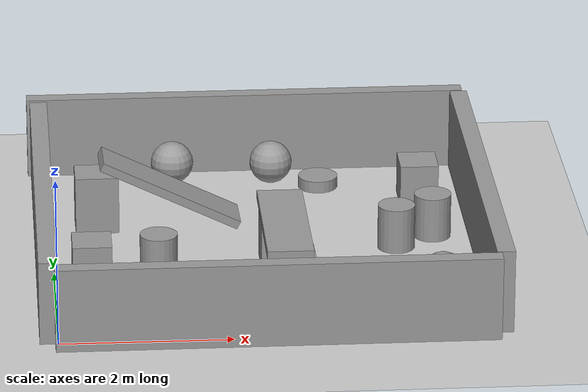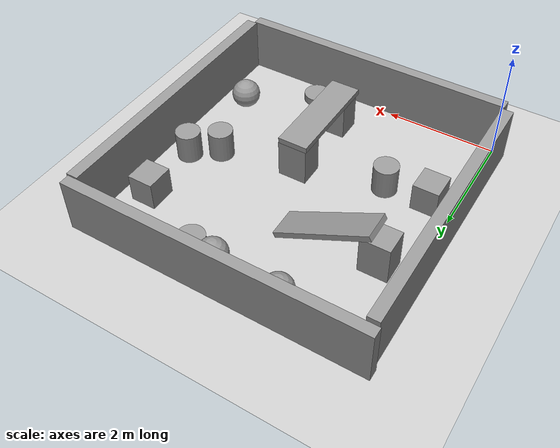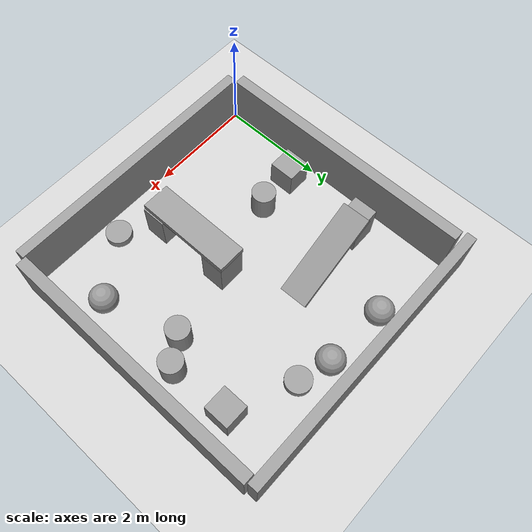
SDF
<sdf version="1.6">
 <world name="default">
  <model name="ground_plane">
   <static>1</static>
   <link name="link">
    <collision name="collision">
     <geometry><plane><normal>0 0 1</normal><size>100 100</size></plane></geometry>
     <surface><friction><ode><mu>100</mu><mu2>50</mu2></ode></friction></surface>
    </collision>
    <visual name="visual">
     <cast_shadows>0</cast_shadows>
     <geometry><plane><normal>0 0 1</normal><size>100 100</size></plane></geometry>
     <material>
      <script><uri>file://media/materials/scripts/gazebo.material</uri><name>Gazebo/Grey</name></script>
     </material>
    </visual>
   </link>
  </model>
  <light name="sun" type="directional">
   <pose>0 0 10 0 -0 0</pose>
   <diffuse>0.8 0.8 0.8 1</diffuse>
   <specular>0.1 0.1 0.1 1</specular>
   <attenuation>
    <range>1000</range>
    <constant>0.9</constant>
    <linear>0.01</linear>
    <quadratic>0.001</quadratic>
   </attenuation>
   <direction>-0.5 0.5 -1</direction>
  </light>
  <gravity>0 0 -9.8</gravity>
  <magnetic_field>6e-06 2.3e-05 -4.2e-05</magnetic_field>
  <atmosphere type="adiabatic"/>
  <physics name="default_physics" default="0" type="ode">
   <max_step_size>0.001</max_step_size>
   <real_time_factor>1</real_time_factor>
   <real_time_update_rate>1000</real_time_update_rate>
  </physics>
  <scene><ambient>0.4 0.4 0.4 1</ambient><background>0.7 0.7 0.7 1</background><shadows>1</shadows></scene>
  <spherical_coordinates>
   <surface_model>EARTH_WGS84</surface_model>
   <latitude_deg>0</latitude_deg>
   <longitude_deg>0</longitude_deg>
   <elevation>0</elevation>
   <heading_deg>0</heading_deg>
  </spherical_coordinates>
  <model name="object1">
   <link name="link">
    <inertial>
     <mass>1</mass>
     <inertia>
      <ixx>0.166667</ixx>
      <ixy>0</ixy>
      <ixz>0</ixz>
      <iyy>0.166667</iyy>
      <iyz>0</iyz>
      <izz>0.166667</izz>
     </inertia>
    </inertial>
    <visual name="visual">
     <geometry><box><size>0.462419 0.484025 0.518106</size></box></geometry>
     <material>
      <script><name>Gazebo/Grey</name><uri>file://media/materials/scripts/gazebo.material</uri></script>
      <ambient>0.3 0.3 0.3 1</ambient>
      <diffuse>0.7 0.7 0.7 1</diffuse>
      <specular>0.01 0.01 0.01 1</specular>
      <emissive>0 0 0 1</emissive>
     </material>
    </visual>
    <collision name="collision">
     <geometry><box><size>0.462419 0.484025 0.518106</size></box></geometry>
     <surface>
      <friction>
       <ode><mu>1</mu><mu2>1</mu2><fdir1>0 0 0</fdir1><slip1>0</slip1><slip2>0</slip2></ode>
       <torsional>
        <coefficient>1</coefficient>
        <patch_radius>0</patch_radius>
        <surface_radius>0</surface_radius>
        <use_patch_radius>1</use_patch_radius>
        <ode><slip>0</slip></ode>
       </torsional>
      </friction>
      <bounce><restitution_coefficient>0</restitution_coefficient><threshold>1e+06</threshold></bounce>
      <contact>
       <collide_without_contact>0</collide_without_contact>
       <collide_without_contact_bitmask>1</collide_without_contact_bitmask>
       <collide_bitmask>1</collide_bitmask>
       <ode>
        <soft_cfm>0</soft_cfm>
        <soft_erp>0.2</soft_erp>
        <kp>1e+13</kp>
        <kd>1</kd>
        <max_vel>0.01</max_vel>
        <min_depth>0</min_depth>
       </ode>
       <bullet>
        <split_impulse>1</split_impulse>
        <split_impulse_penetration_threshold>-0.01</split_impulse_penetration_threshold>
        <soft_cfm>0</soft_cfm>
        <soft_erp>0.2</soft_erp>
        <kp>1e+13</kp>
        <kd>1</kd>
       </bullet>
      </contact>
     </surface>
    </collision>
   </link>
   <static>1</static>
   <pose>0.440381 1.76912 0.259053 0 -0 0</pose>
  </model>
  <model name="object1_clone_0">
   <link name="link">
    <inertial>
     <mass>1</mass>
     <inertia>
      <ixx>0.166667</ixx>
      <ixy>0</ixy>
      <ixz>0</ixz>
      <iyy>0.166667</iyy>
      <iyz>0</iyz>
      <izz>0.166667</izz>
     </inertia>
    </inertial>
    <visual name="visual">
     <geometry><box><size>0.462419 0.484025 0.518106</size></box></geometry>
     <material>
      <script><name>Gazebo/Grey</name><uri>file://media/materials/scripts/gazebo.material</uri></script>
      <ambient>0.3 0.3 0.3 1</ambient>
      <diffuse>0.7 0.7 0.7 1</diffuse>
      <specular>0.01 0.01 0.01 1</specular>
      <emissive>0 0 0 1</emissive>
     </material>
    </visual>
    <collision name="collision">
     <geometry><box><size>0.462419 0.484025 0.518106</size></box></geometry>
     <surface>
      <friction>
       <ode><mu>1</mu><mu2>1</mu2><fdir1>0 0 0</fdir1><slip1>0</slip1><slip2>0</slip2></ode>
       <torsional>
        <coefficient>1</coefficient>
        <patch_radius>0</patch_radius>
        <surface_radius>0</surface_radius>
        <use_patch_radius>1</use_patch_radius>
        <ode><slip>0</slip></ode>
       </torsional>
      </friction>
      <bounce><restitution_coefficient>0</restitution_coefficient><threshold>1e+06</threshold></bounce>
      <contact>
       <collide_without_contact>0</collide_without_contact>
       <collide_without_contact_bitmask>1</collide_without_contact_bitmask>
       <collide_bitmask>1</collide_bitmask>
       <ode>
        <soft_cfm>0</soft_cfm>
        <soft_erp>0.2</soft_erp>
        <kp>1e+13</kp>
        <kd>1</kd>
        <max_vel>0.01</max_vel>
        <min_depth>0</min_depth>
       </ode>
       <bullet>
        <split_impulse>1</split_impulse>
        <split_impulse_penetration_threshold>-0.01</split_impulse_penetration_threshold>
        <soft_cfm>0</soft_cfm>
        <soft_erp>0.2</soft_erp>
        <kp>1e+13</kp>
        <kd>1</kd>
       </bullet>
      </contact>
     </surface>
    </collision>
   </link>
   <static>1</static>
   <pose>4.48758 3.97968 0.259053 0 -0 0</pose>
  </model>
  <model name="object2">
   <link name="link">
    <inertial>
     <mass>1</mass>
     <inertia>
      <ixx>0.166667</ixx>
      <ixy>0</ixy>
      <ixz>0</ixz>
      <iyy>0.166667</iyy>
      <iyz>0</iyz>
      <izz>0.166667</izz>
     </inertia>
    </inertial>
    <visual name="visual">
     <geometry><box><size>0.518422 0.450005 0.707103</size></box></geometry>
     <material>
      <script><name>Gazebo/Grey</name><uri>file://media/materials/scripts/gazebo.material</uri></script>
      <ambient>0.3 0.3 0.3 1</ambient>
      <diffuse>0.7 0.7 0.7 1</diffuse>
      <specular>0.01 0.01 0.01 1</specular>
      <emissive>0 0 0 1</emissive>
     </material>
    </visual>
    <collision name="collision">
     <geometry><box><size>0.518422 0.450005 0.707103</size></box></geometry>
     <surface>
      <friction>
       <ode><mu>1</mu><mu2>1</mu2><fdir1>0 0 0</fdir1><slip1>0</slip1><slip2>0</slip2></ode>
       <torsional>
        <coefficient>1</coefficient>
        <patch_radius>0</patch_radius>
        <surface_radius>0</surface_radius>
        <use_patch_radius>1</use_patch_radius>
        <ode><slip>0</slip></ode>
       </torsional>
      </friction>
      <bounce><restitution_coefficient>0</restitution_coefficient><threshold>1e+06</threshold></bounce>
      <contact>
       <collide_without_contact>0</collide_without_contact>
       <collide_without_contact_bitmask>1</collide_without_contact_bitmask>
       <collide_bitmask>1</collide_bitmask>
       <ode>
        <soft_cfm>0</soft_cfm>
        <soft_erp>0.2</soft_erp>
        <kp>1e+13</kp>
        <kd>1</kd>
        <max_vel>0.01</max_vel>
        <min_depth>0</min_depth>
       </ode>
       <bullet>
        <split_impulse>1</split_impulse>
        <split_impulse_penetration_threshold>-0.01</split_impulse_penetration_threshold>
        <soft_cfm>0</soft_cfm>
        <soft_erp>0.2</soft_erp>
        <kp>1e+13</kp>
        <kd>1</kd>
       </bullet>
      </contact>
     </surface>
    </collision>
   </link>
   <static>1</static>
   <pose>0.548705 3.38818 0.353552 0 -0 0.0094</pose>
  </model>
  <model name="object3">
   <link name="link">
    <inertial>
     <mass>1</mass>
     <inertia>
      <ixx>0.166667</ixx>
      <ixy>0</ixy>
      <ixz>0</ixz>
      <iyy>0.166667</iyy>
      <iyz>0</iyz>
      <izz>0.166667</izz>
     </inertia>
    </inertial>
    <visual name="visual">
     <geometry><box><size>1.83274 0.534759 0.105167</size></box></geometry>
     <material>
      <script><name>Gazebo/Grey</name><uri>file://media/materials/scripts/gazebo.material</uri></script>
      <ambient>0.3 0.3 0.3 1</ambient>
      <diffuse>0.7 0.7 0.7 1</diffuse>
      <specular>0.01 0.01 0.01 1</specular>
      <emissive>0 0 0 1</emissive>
     </material>
    </visual>
    <collision name="collision">
     <geometry><box><size>1.83274 0.534759 0.105167</size></box></geometry>
     <surface>
      <friction>
       <ode><mu>1</mu><mu2>1</mu2><fdir1>0 0 0</fdir1><slip1>0</slip1><slip2>0</slip2></ode>
       <torsional>
        <coefficient>1</coefficient>
        <patch_radius>0</patch_radius>
        <surface_radius>0</surface_radius>
        <use_patch_radius>1</use_patch_radius>
        <ode><slip>0</slip></ode>
       </torsional>
      </friction>
      <bounce><restitution_coefficient>0</restitution_coefficient><threshold>1e+06</threshold></bounce>
      <contact>
       <collide_without_contact>0</collide_without_contact>
       <collide_without_contact_bitmask>1</collide_without_contact_bitmask>
       <collide_bitmask>1</collide_bitmask>
       <ode>
        <soft_cfm>0</soft_cfm>
        <soft_erp>0.2</soft_erp>
        <kp>1e+13</kp>
        <kd>1</kd>
        <max_vel>0.01</max_vel>
        <min_depth>0</min_depth>
       </ode>
       <bullet>
        <split_impulse>1</split_impulse>
        <split_impulse_penetration_threshold>-0.01</split_impulse_penetration_threshold>
        <soft_cfm>0</soft_cfm>
        <soft_erp>0.2</soft_erp>
        <kp>1e+13</kp>
        <kd>1</kd>
       </bullet>
      </contact>
     </surface>
    </collision>
   </link>
   <static>1</static>
   <pose>1.42663 3.42723 0.456993 0.008272 0.462769 0.028019</pose>
  </model>
  <model name="object2_clone">
   <link name="link">
    <inertial>
     <mass>1</mass>
     <inertia>
      <ixx>0.166667</ixx>
      <ixy>0</ixy>
      <ixz>0</ixz>
      <iyy>0.166667</iyy>
      <iyz>0</iyz>
      <izz>0.166667</izz>
     </inertia>
    </inertial>
    <visual name="visual">
     <geometry><box><size>0.518422 0.450005 0.707103</size></box></geometry>
     <material>
      <script><name>Gazebo/Grey</name><uri>file://media/materials/scripts/gazebo.material</uri></script>
      <ambient>0.3 0.3 0.3 1</ambient>
      <diffuse>0.7 0.7 0.7 1</diffuse>
      <specular>0.01 0.01 0.01 1</specular>
      <emissive>0 0 0 1</emissive>
     </material>
    </visual>
    <collision name="collision">
     <geometry><box><size>0.518422 0.450005 0.707103</size></box></geometry>
     <surface>
      <friction>
       <ode><mu>1</mu><mu2>1</mu2><fdir1>0 0 0</fdir1><slip1>0</slip1><slip2>0</slip2></ode>
       <torsional>
        <coefficient>1</coefficient>
        <patch_radius>0</patch_radius>
        <surface_radius>0</surface_radius>
        <use_patch_radius>1</use_patch_radius>
        <ode><slip>0</slip></ode>
       </torsional>
      </friction>
      <bounce><restitution_coefficient>0</restitution_coefficient><threshold>1e+06</threshold></bounce>
      <contact>
       <collide_without_contact>0</collide_without_contact>
       <collide_without_contact_bitmask>1</collide_without_contact_bitmask>
       <collide_bitmask>1</collide_bitmask>
       <ode>
        <soft_cfm>0</soft_cfm>
        <soft_erp>0.2</soft_erp>
        <kp>1e+13</kp>
        <kd>1</kd>
        <max_vel>0.01</max_vel>
        <min_depth>0</min_depth>
       </ode>
       <bullet>
        <split_impulse>1</split_impulse>
        <split_impulse_penetration_threshold>-0.01</split_impulse_penetration_threshold>
        <soft_cfm>0</soft_cfm>
        <soft_erp>0.2</soft_erp>
        <kp>1e+13</kp>
        <kd>1</kd>
       </bullet>
      </contact>
     </surface>
    </collision>
   </link>
   <static>1</static>
   <pose>2.69917 2.20262 0.353552 0 -0 0.0094</pose>
  </model>
  <model name="object2_clone_0">
   <link name="link">
    <inertial>
     <mass>1</mass>
     <inertia>
      <ixx>0.166667</ixx>
      <ixy>0</ixy>
      <ixz>0</ixz>
      <iyy>0.166667</iyy>
      <iyz>0</iyz>
      <izz>0.166667</izz>
     </inertia>
    </inertial>
    <visual name="visual">
     <geometry><box><size>0.518422 0.450005 0.707103</size></box></geometry>
     <material>
      <script><name>Gazebo/Grey</name><uri>file://media/materials/scripts/gazebo.material</uri></script>
      <ambient>0.3 0.3 0.3 1</ambient>
      <diffuse>0.7 0.7 0.7 1</diffuse>
      <specular>0.01 0.01 0.01 1</specular>
      <emissive>0 0 0 1</emissive>
     </material>
    </visual>
    <collision name="collision">
     <geometry><box><size>0.518422 0.450005 0.707103</size></box></geometry>
     <surface>
      <friction>
       <ode><mu>1</mu><mu2>1</mu2><fdir1>0 0 0</fdir1><slip1>0</slip1><slip2>0</slip2></ode>
       <torsional>
        <coefficient>1</coefficient>
        <patch_radius>0</patch_radius>
        <surface_radius>0</surface_radius>
        <use_patch_radius>1</use_patch_radius>
        <ode><slip>0</slip></ode>
       </torsional>
      </friction>
      <bounce><restitution_coefficient>0</restitution_coefficient><threshold>1e+06</threshold></bounce>
      <contact>
       <collide_without_contact>0</collide_without_contact>
       <collide_without_contact_bitmask>1</collide_without_contact_bitmask>
       <collide_bitmask>1</collide_bitmask>
       <ode>
        <soft_cfm>0</soft_cfm>
        <soft_erp>0.2</soft_erp>
        <kp>1e+13</kp>
        <kd>1</kd>
        <max_vel>0.01</max_vel>
        <min_depth>0</min_depth>
       </ode>
       <bullet>
        <split_impulse>1</split_impulse>
        <split_impulse_penetration_threshold>-0.01</split_impulse_penetration_threshold>
        <soft_cfm>0</soft_cfm>
        <soft_erp>0.2</soft_erp>
        <kp>1e+13</kp>
        <kd>1</kd>
       </bullet>
      </contact>
     </surface>
    </collision>
   </link>
   <static>1</static>
   <pose>2.7204 0.828022 0.353552 0 -0 0.0094</pose>
  </model>
  <model name="object3_clone">
   <link name="link">
    <inertial>
     <mass>1</mass>
     <inertia>
      <ixx>0.166667</ixx>
      <ixy>0</ixy>
      <ixz>0</ixz>
      <iyy>0.166667</iyy>
      <iyz>0</iyz>
      <izz>0.166667</izz>
     </inertia>
    </inertial>
    <visual name="visual">
     <geometry><box><size>1.83274 0.534759 0.105167</size></box></geometry>
     <material>
      <script><name>Gazebo/Grey</name><uri>file://media/materials/scripts/gazebo.material</uri></script>
      <ambient>0.3 0.3 0.3 1</ambient>
      <diffuse>0.7 0.7 0.7 1</diffuse>
      <specular>0.01 0.01 0.01 1</specular>
      <emissive>0 0 0 1</emissive>
     </material>
    </visual>
    <collision name="collision">
     <geometry><box><size>1.83274 0.534759 0.105167</size></box></geometry>
     <surface>
      <friction>
       <ode><mu>1</mu><mu2>1</mu2><fdir1>0 0 0</fdir1><slip1>0</slip1><slip2>0</slip2></ode>
       <torsional>
        <coefficient>1</coefficient>
        <patch_radius>0</patch_radius>
        <surface_radius>0</surface_radius>
        <use_patch_radius>1</use_patch_radius>
        <ode><slip>0</slip></ode>
       </torsional>
      </friction>
      <bounce><restitution_coefficient>0</restitution_coefficient><threshold>1e+06</threshold></bounce>
      <contact>
       <collide_without_contact>0</collide_without_contact>
       <collide_without_contact_bitmask>1</collide_without_contact_bitmask>
       <collide_bitmask>1</collide_bitmask>
       <ode>
        <soft_cfm>0</soft_cfm>
        <soft_erp>0.2</soft_erp>
        <kp>1e+13</kp>
        <kd>1</kd>
        <max_vel>0.01</max_vel>
        <min_depth>0</min_depth>
       </ode>
       <bullet>
        <split_impulse>1</split_impulse>
        <split_impulse_penetration_threshold>-0.01</split_impulse_penetration_threshold>
        <soft_cfm>0</soft_cfm>
        <soft_erp>0.2</soft_erp>
        <kp>1e+13</kp>
        <kd>1</kd>
       </bullet>
      </contact>
     </surface>
    </collision>
   </link>
   <static>1</static>
   <pose>2.6845 1.51565 0.75991 0 0 -1.57</pose>
  </model>
  <model name="object4">
   <link name="link">
    <inertial>
     <mass>1</mass>
     <inertia><ixx>0.1</ixx><ixy>0</ixy><ixz>0</ixz><iyy>0.1</iyy><iyz>0</iyz><izz>0.1</izz></inertia>
    </inertial>
    <visual name="visual">
     <geometry><sphere><radius>0.260368</radius></sphere></geometry>
     <material>
      <script><name>Gazebo/Grey</name><uri>file://media/materials/scripts/gazebo.material</uri></script>
      <ambient>0.3 0.3 0.3 1</ambient>
      <diffuse>0.7 0.7 0.7 1</diffuse>
      <specular>0.01 0.01 0.01 1</specular>
      <emissive>0 0 0 1</emissive>
     </material>
    </visual>
    <collision name="collision">
     <geometry><sphere><radius>0.260368</radius></sphere></geometry>
     <surface>
      <friction>
       <ode><mu>1</mu><mu2>1</mu2><fdir1>0 0 0</fdir1><slip1>0</slip1><slip2>0</slip2></ode>
       <torsional>
        <coefficient>1</coefficient>
        <patch_radius>0</patch_radius>
        <surface_radius>0</surface_radius>
        <use_patch_radius>1</use_patch_radius>
        <ode><slip>0</slip></ode>
       </torsional>
      </friction>
      <bounce><restitution_coefficient>0</restitution_coefficient><threshold>1e+06</threshold></bounce>
      <contact>
       <collide_without_contact>0</collide_without_contact>
       <collide_without_contact_bitmask>1</collide_without_contact_bitmask>
       <collide_bitmask>1</collide_bitmask>
       <ode>
        <soft_cfm>0</soft_cfm>
        <soft_erp>0.2</soft_erp>
        <kp>1e+13</kp>
        <kd>1</kd>
        <max_vel>0.01</max_vel>
        <min_depth>0</min_depth>
       </ode>
       <bullet>
        <split_impulse>1</split_impulse>
        <split_impulse_penetration_threshold>-0.01</split_impulse_penetration_threshold>
        <soft_cfm>0</soft_cfm>
        <soft_erp>0.2</soft_erp>
        <kp>1e+13</kp>
        <kd>1</kd>
       </bullet>
      </contact>
     </surface>
    </collision>
   </link>
   <static>1</static>
   <pose>4.4994 1.13162 0.247825 0 -0 0</pose>
  </model>
  <model name="object4_clone">
   <link name="link">
    <inertial>
     <mass>1</mass>
     <inertia><ixx>0.1</ixx><ixy>0</ixy><ixz>0</ixz><iyy>0.1</iyy><iyz>0</iyz><izz>0.1</izz></inertia>
    </inertial>
    <visual name="visual">
     <geometry><sphere><radius>0.260368</radius></sphere></geometry>
     <material>
      <script><name>Gazebo/Grey</name><uri>file://media/materials/scripts/gazebo.material</uri></script>
      <ambient>0.3 0.3 0.3 1</ambient>
      <diffuse>0.7 0.7 0.7 1</diffuse>
      <specular>0.01 0.01 0.01 1</specular>
      <emissive>0 0 0 1</emissive>
     </material>
    </visual>
    <collision name="collision">
     <geometry><sphere><radius>0.260368</radius></sphere></geometry>
     <surface>
      <friction>
       <ode><mu>1</mu><mu2>1</mu2><fdir1>0 0 0</fdir1><slip1>0</slip1><slip2>0</slip2></ode>
       <torsional>
        <coefficient>1</coefficient>
        <patch_radius>0</patch_radius>
        <surface_radius>0</surface_radius>
        <use_patch_radius>1</use_patch_radius>
        <ode><slip>0</slip></ode>
       </torsional>
      </friction>
      <bounce><restitution_coefficient>0</restitution_coefficient><threshold>1e+06</threshold></bounce>
      <contact>
       <collide_without_contact>0</collide_without_contact>
       <collide_without_contact_bitmask>1</collide_without_contact_bitmask>
       <collide_bitmask>1</collide_bitmask>
       <ode>
        <soft_cfm>0</soft_cfm>
        <soft_erp>0.2</soft_erp>
        <kp>1e+13</kp>
        <kd>1</kd>
        <max_vel>0.01</max_vel>
        <min_depth>0</min_depth>
       </ode>
       <bullet>
        <split_impulse>1</split_impulse>
        <split_impulse_penetration_threshold>-0.01</split_impulse_penetration_threshold>
        <soft_cfm>0</soft_cfm>
        <soft_erp>0.2</soft_erp>
        <kp>1e+13</kp>
        <kd>1</kd>
       </bullet>
      </contact>
     </surface>
    </collision>
   </link>
   <static>1</static>
   <pose>2.73638 4.65874 0.260368 0 -0 0</pose>
  </model>
  <model name="object4_clone_0">
   <link name="link">
    <inertial>
     <mass>1</mass>
     <inertia><ixx>0.1</ixx><ixy>0</ixy><ixz>0</ixz><iyy>0.1</iyy><iyz>0</iyz><izz>0.1</izz></inertia>
    </inertial>
    <visual name="visual">
     <geometry><sphere><radius>0.260368</radius></sphere></geometry>
     <material>
      <script><name>Gazebo/Grey</name><uri>file://media/materials/scripts/gazebo.material</uri></script>
      <ambient>0.3 0.3 0.3 1</ambient>
      <diffuse>0.7 0.7 0.7 1</diffuse>
      <specular>0.01 0.01 0.01 1</specular>
      <emissive>0 0 0 1</emissive>
     </material>
    </visual>
    <collision name="collision">
     <geometry><sphere><radius>0.260368</radius></sphere></geometry>
     <surface>
      <friction>
       <ode><mu>1</mu><mu2>1</mu2><fdir1>0 0 0</fdir1><slip1>0</slip1><slip2>0</slip2></ode>
       <torsional>
        <coefficient>1</coefficient>
        <patch_radius>0</patch_radius>
        <surface_radius>0</surface_radius>
        <use_patch_radius>1</use_patch_radius>
        <ode><slip>0</slip></ode>
       </torsional>
      </friction>
      <bounce><restitution_coefficient>0</restitution_coefficient><threshold>1e+06</threshold></bounce>
      <contact>
       <collide_without_contact>0</collide_without_contact>
       <collide_without_contact_bitmask>1</collide_without_contact_bitmask>
       <collide_bitmask>1</collide_bitmask>
       <ode>
        <soft_cfm>0</soft_cfm>
        <soft_erp>0.2</soft_erp>
        <kp>1e+13</kp>
        <kd>1</kd>
        <max_vel>0.01</max_vel>
        <min_depth>0</min_depth>
       </ode>
       <bullet>
        <split_impulse>1</split_impulse>
        <split_impulse_penetration_threshold>-0.01</split_impulse_penetration_threshold>
        <soft_cfm>0</soft_cfm>
        <soft_erp>0.2</soft_erp>
        <kp>1e+13</kp>
        <kd>1</kd>
       </bullet>
      </contact>
     </surface>
    </collision>
   </link>
   <static>1</static>
   <pose>1.5218 4.71849 0.260368 0 -0 0</pose>
  </model>
  <model name="object5">
   <link name="link">
    <inertial>
     <mass>1</mass>
     <inertia><ixx>0.145833</ixx><ixy>0</ixy><ixz>0</ixz><iyy>0.145833</iyy><iyz>0</iyz><izz>0.125</izz></inertia>
    </inertial>
    <visual name="visual">
     <geometry><cylinder><radius>0.221555</radius><length>0.542695</length></cylinder></geometry>
     <material>
      <script><name>Gazebo/Grey</name><uri>file://media/materials/scripts/gazebo.material</uri></script>
      <ambient>0.3 0.3 0.3 1</ambient>
      <diffuse>0.7 0.7 0.7 1</diffuse>
      <specular>0.01 0.01 0.01 1</specular>
      <emissive>0 0 0 1</emissive>
     </material>
    </visual>
    <collision name="collision">
     <geometry><cylinder><radius>0.221555</radius><length>0.542695</length></cylinder></geometry>
     <surface>
      <friction>
       <ode><mu>1</mu><mu2>1</mu2><fdir1>0 0 0</fdir1><slip1>0</slip1><slip2>0</slip2></ode>
       <torsional>
        <coefficient>1</coefficient>
        <patch_radius>0</patch_radius>
        <surface_radius>0</surface_radius>
        <use_patch_radius>1</use_patch_radius>
        <ode><slip>0</slip></ode>
       </torsional>
      </friction>
      <bounce><restitution_coefficient>0</restitution_coefficient><threshold>1e+06</threshold></bounce>
      <contact>
       <collide_without_contact>0</collide_without_contact>
       <collide_without_contact_bitmask>1</collide_without_contact_bitmask>
       <collide_bitmask>1</collide_bitmask>
       <ode>
        <soft_cfm>0</soft_cfm>
        <soft_erp>0.2</soft_erp>
        <kp>1e+13</kp>
        <kd>1</kd>
        <max_vel>0.01</max_vel>
        <min_depth>0</min_depth>
       </ode>
       <bullet>
        <split_impulse>1</split_impulse>
        <split_impulse_penetration_threshold>-0.01</split_impulse_penetration_threshold>
        <soft_cfm>0</soft_cfm>
        <soft_erp>0.2</soft_erp>
        <kp>1e+13</kp>
        <kd>1</kd>
       </bullet>
      </contact>
     </surface>
    </collision>
   </link>
   <static>1</static>
   <pose>1.22669 1.83365 0.271347 0 -0 0</pose>
  </model>
  <model name="object5_clone">
   <link name="link">
    <inertial>
     <mass>1</mass>
     <inertia><ixx>0.145833</ixx><ixy>0</ixy><ixz>0</ixz><iyy>0.145833</iyy><iyz>0</iyz><izz>0.125</izz></inertia>
    </inertial>
    <visual name="visual">
     <geometry><cylinder><radius>0.221555</radius><length>0.542695</length></cylinder></geometry>
     <material>
      <script><name>Gazebo/Grey</name><uri>file://media/materials/scripts/gazebo.material</uri></script>
      <ambient>0.3 0.3 0.3 1</ambient>
      <diffuse>0.7 0.7 0.7 1</diffuse>
      <specular>0.01 0.01 0.01 1</specular>
      <emissive>0 0 0 1</emissive>
     </material>
    </visual>
    <collision name="collision">
     <geometry><cylinder><radius>0.221555</radius><length>0.542695</length></cylinder></geometry>
     <surface>
      <friction>
       <ode><mu>1</mu><mu2>1</mu2><fdir1>0 0 0</fdir1><slip1>0</slip1><slip2>0</slip2></ode>
       <torsional>
        <coefficient>1</coefficient>
        <patch_radius>0</patch_radius>
        <surface_radius>0</surface_radius>
        <use_patch_radius>1</use_patch_radius>
        <ode><slip>0</slip></ode>
       </torsional>
      </friction>
      <bounce><restitution_coefficient>0</restitution_coefficient><threshold>1e+06</threshold></bounce>
      <contact>
       <collide_without_contact>0</collide_without_contact>
       <collide_without_contact_bitmask>1</collide_without_contact_bitmask>
       <collide_bitmask>1</collide_bitmask>
       <ode>
        <soft_cfm>0</soft_cfm>
        <soft_erp>0.2</soft_erp>
        <kp>1e+13</kp>
        <kd>1</kd>
        <max_vel>0.01</max_vel>
        <min_depth>0</min_depth>
       </ode>
       <bullet>
        <split_impulse>1</split_impulse>
        <split_impulse_penetration_threshold>-0.01</split_impulse_penetration_threshold>
        <soft_cfm>0</soft_cfm>
        <soft_erp>0.2</soft_erp>
        <kp>1e+13</kp>
        <kd>1</kd>
       </bullet>
      </contact>
     </surface>
    </collision>
   </link>
   <static>1</static>
   <pose>4.08789 2.52624 0.271347 0 -0 0</pose>
  </model>
  <model name="object5_clone_0">
   <link name="link">
    <inertial>
     <mass>1</mass>
     <inertia><ixx>0.145833</ixx><ixy>0</ixy><ixz>0</ixz><iyy>0.145833</iyy><iyz>0</iyz><izz>0.125</izz></inertia>
    </inertial>
    <visual name="visual">
     <geometry><cylinder><radius>0.221555</radius><length>0.542695</length></cylinder></geometry>
     <material>
      <script><name>Gazebo/Grey</name><uri>file://media/materials/scripts/gazebo.material</uri></script>
      <ambient>0.3 0.3 0.3 1</ambient>
      <diffuse>0.7 0.7 0.7 1</diffuse>
      <specular>0.01 0.01 0.01 1</specular>
      <emissive>0 0 0 1</emissive>
     </material>
    </visual>
    <collision name="collision">
     <geometry><cylinder><radius>0.221555</radius><length>0.542695</length></cylinder></geometry>
     <surface>
      <friction>
       <ode><mu>1</mu><mu2>1</mu2><fdir1>0 0 0</fdir1><slip1>0</slip1><slip2>0</slip2></ode>
       <torsional>
        <coefficient>1</coefficient>
        <patch_radius>0</patch_radius>
        <surface_radius>0</surface_radius>
        <use_patch_radius>1</use_patch_radius>
        <ode><slip>0</slip></ode>
       </torsional>
      </friction>
      <bounce><restitution_coefficient>0</restitution_coefficient><threshold>1e+06</threshold></bounce>
      <contact>
       <collide_without_contact>0</collide_without_contact>
       <collide_without_contact_bitmask>1</collide_without_contact_bitmask>
       <collide_bitmask>1</collide_bitmask>
       <ode>
        <soft_cfm>0</soft_cfm>
        <soft_erp>0.2</soft_erp>
        <kp>1e+13</kp>
        <kd>1</kd>
        <max_vel>0.01</max_vel>
        <min_depth>0</min_depth>
       </ode>
       <bullet>
        <split_impulse>1</split_impulse>
        <split_impulse_penetration_threshold>-0.01</split_impulse_penetration_threshold>
        <soft_cfm>0</soft_cfm>
        <soft_erp>0.2</soft_erp>
        <kp>1e+13</kp>
        <kd>1</kd>
       </bullet>
      </contact>
     </surface>
    </collision>
   </link>
   <static>1</static>
   <pose>4.55176 2.83976 0.271347 0 -0 0</pose>
  </model>
  <model name="object6">
   <link name="link">
    <inertial>
     <mass>1</mass>
     <inertia><ixx>0.145833</ixx><ixy>0</ixy><ixz>0</ixz><iyy>0.145833</iyy><iyz>0</iyz><izz>0.125</izz></inertia>
    </inertial>
    <visual name="visual">
     <geometry><cylinder><radius>0.240804</radius><length>0.144464</length></cylinder></geometry>
     <material>
      <script><name>Gazebo/Grey</name><uri>file://media/materials/scripts/gazebo.material</uri></script>
      <ambient>0.3 0.3 0.3 1</ambient>
      <diffuse>0.7 0.7 0.7 1</diffuse>
      <specular>0.01 0.01 0.01 1</specular>
      <emissive>0 0 0 1</emissive>
     </material>
    </visual>
    <collision name="collision">
     <geometry><cylinder><radius>0.240804</radius><length>0.144464</length></cylinder></geometry>
     <surface>
      <friction>
       <ode><mu>1</mu><mu2>1</mu2><fdir1>0 0 0</fdir1><slip1>0</slip1><slip2>0</slip2></ode>
       <torsional>
        <coefficient>1</coefficient>
        <patch_radius>0</patch_radius>
        <surface_radius>0</surface_radius>
        <use_patch_radius>1</use_patch_radius>
        <ode><slip>0</slip></ode>
       </torsional>
      </friction>
      <bounce><restitution_coefficient>0</restitution_coefficient><threshold>1e+06</threshold></bounce>
      <contact>
       <collide_without_contact>0</collide_without_contact>
       <collide_without_contact_bitmask>1</collide_without_contact_bitmask>
       <collide_bitmask>1</collide_bitmask>
       <ode>
        <soft_cfm>0</soft_cfm>
        <soft_erp>0.2</soft_erp>
        <kp>1e+13</kp>
        <kd>1</kd>
        <max_vel>0.01</max_vel>
        <min_depth>0</min_depth>
       </ode>
       <bullet>
        <split_impulse>1</split_impulse>
        <split_impulse_penetration_threshold>-0.01</split_impulse_penetration_threshold>
        <soft_cfm>0</soft_cfm>
        <soft_erp>0.2</soft_erp>
        <kp>1e+13</kp>
        <kd>1</kd>
       </bullet>
      </contact>
     </surface>
    </collision>
   </link>
   <static>1</static>
   <pose>3.30642 4.4703 0.072232 0 -0 0</pose>
  </model>
  <model name="object6_clone">
   <link name="link">
    <inertial>
     <mass>1</mass>
     <inertia><ixx>0.145833</ixx><ixy>0</ixy><ixz>0</ixz><iyy>0.145833</iyy><iyz>0</iyz><izz>0.125</izz></inertia>
    </inertial>
    <visual name="visual">
     <geometry><cylinder><radius>0.240804</radius><length>0.144464</length></cylinder></geometry>
     <material>
      <script><name>Gazebo/Grey</name><uri>file://media/materials/scripts/gazebo.material</uri></script>
      <ambient>0.3 0.3 0.3 1</ambient>
      <diffuse>0.7 0.7 0.7 1</diffuse>
      <specular>0.01 0.01 0.01 1</specular>
      <emissive>0 0 0 1</emissive>
     </material>
    </visual>
    <collision name="collision">
     <geometry><cylinder><radius>0.240804</radius><length>0.144464</length></cylinder></geometry>
     <surface>
      <friction>
       <ode><mu>1</mu><mu2>1</mu2><fdir1>0 0 0</fdir1><slip1>0</slip1><slip2>0</slip2></ode>
       <torsional>
        <coefficient>1</coefficient>
        <patch_radius>0</patch_radius>
        <surface_radius>0</surface_radius>
        <use_patch_radius>1</use_patch_radius>
        <ode><slip>0</slip></ode>
       </torsional>
      </friction>
      <bounce><restitution_coefficient>0</restitution_coefficient><threshold>1e+06</threshold></bounce>
      <contact>
       <collide_without_contact>0</collide_without_contact>
       <collide_without_contact_bitmask>1</collide_without_contact_bitmask>
       <collide_bitmask>1</collide_bitmask>
       <ode>
        <soft_cfm>0</soft_cfm>
        <soft_erp>0.2</soft_erp>
        <kp>1e+13</kp>
        <kd>1</kd>
        <max_vel>0.01</max_vel>
        <min_depth>0</min_depth>
       </ode>
       <bullet>
        <split_impulse>1</split_impulse>
        <split_impulse_penetration_threshold>-0.01</split_impulse_penetration_threshold>
        <soft_cfm>0</soft_cfm>
        <soft_erp>0.2</soft_erp>
        <kp>1e+13</kp>
        <kd>1</kd>
       </bullet>
      </contact>
     </surface>
    </collision>
   </link>
   <static>1</static>
   <pose>3.42647 0.307172 0.072232 0 -0 0</pose>
  </model>
  <model name="wall2">
   <link name="link">
    <inertial>
     <mass>1</mass>
     <inertia>
      <ixx>0.166667</ixx>
      <ixy>0</ixy>
      <ixz>0</ixz>
      <iyy>0.166667</iyy>
      <iyz>0</iyz>
      <izz>0.166667</izz>
     </inertia>
    </inertial>
    <visual name="visual">
     <geometry><box><size>0.209732 4.95363 1</size></box></geometry>
     <material>
      <script><name>Gazebo/Grey</name><uri>file://media/materials/scripts/gazebo.material</uri></script>
      <ambient>0.3 0.3 0.3 1</ambient>
      <diffuse>0.7 0.7 0.7 1</diffuse>
      <specular>0.01 0.01 0.01 1</specular>
      <emissive>0 0 0 1</emissive>
     </material>
    </visual>
    <collision name="collision">
     <geometry><box><size>0.209732 4.95363 1</size></box></geometry>
     <surface>
      <friction>
       <ode><mu>1</mu><mu2>1</mu2><fdir1>0 0 0</fdir1><slip1>0</slip1><slip2>0</slip2></ode>
       <torsional>
        <coefficient>1</coefficient>
        <patch_radius>0</patch_radius>
        <surface_radius>0</surface_radius>
        <use_patch_radius>1</use_patch_radius>
        <ode><slip>0</slip></ode>
       </torsional>
      </friction>
      <bounce><restitution_coefficient>0</restitution_coefficient><threshold>1e+06</threshold></bounce>
      <contact>
       <collide_without_contact>0</collide_without_contact>
       <collide_without_contact_bitmask>1</collide_without_contact_bitmask>
       <collide_bitmask>1</collide_bitmask>
       <ode>
        <soft_cfm>0</soft_cfm>
        <soft_erp>0.2</soft_erp>
        <kp>1e+13</kp>
        <kd>1</kd>
        <max_vel>0.01</max_vel>
        <min_depth>0</min_depth>
       </ode>
       <bullet>
        <split_impulse>1</split_impulse>
        <split_impulse_penetration_threshold>-0.01</split_impulse_penetration_threshold>
        <soft_cfm>0</soft_cfm>
        <soft_erp>0.2</soft_erp>
        <kp>1e+13</kp>
        <kd>1</kd>
       </bullet>
      </contact>
     </surface>
    </collision>
   </link>
   <static>1</static>
   <pose>-0.106968 2.49052 0.5 0 -0 0</pose>
  </model>
  <model name="wall2_clone">
   <link name="link">
    <inertial>
     <mass>1</mass>
     <inertia>
      <ixx>0.166667</ixx>
      <ixy>0</ixy>
      <ixz>0</ixz>
      <iyy>0.166667</iyy>
      <iyz>0</iyz>
      <izz>0.166667</izz>
     </inertia>
    </inertial>
    <visual name="visual">
     <geometry><box><size>0.209732 5.0202 1</size></box></geometry>
     <material>
      <script><name>Gazebo/Grey</name><uri>file://media/materials/scripts/gazebo.material</uri></script>
      <ambient>0.3 0.3 0.3 1</ambient>
      <diffuse>0.7 0.7 0.7 1</diffuse>
      <specular>0.01 0.01 0.01 1</specular>
      <emissive>0 0 0 1</emissive>
     </material>
    </visual>
    <collision name="collision">
     <geometry><box><size>0.209732 5.0202 1</size></box></geometry>
     <surface>
      <friction>
       <ode><mu>1</mu><mu2>1</mu2><fdir1>0 0 0</fdir1><slip1>0</slip1><slip2>0</slip2></ode>
       <torsional>
        <coefficient>1</coefficient>
        <patch_radius>0</patch_radius>
        <surface_radius>0</surface_radius>
        <use_patch_radius>1</use_patch_radius>
        <ode><slip>0</slip></ode>
       </torsional>
      </friction>
      <bounce><restitution_coefficient>0</restitution_coefficient><threshold>1e+06</threshold></bounce>
      <contact>
       <collide_without_contact>0</collide_without_contact>
       <collide_without_contact_bitmask>1</collide_without_contact_bitmask>
       <collide_bitmask>1</collide_bitmask>
       <ode>
        <soft_cfm>0</soft_cfm>
        <soft_erp>0.2</soft_erp>
        <kp>1e+13</kp>
        <kd>1</kd>
        <max_vel>0.01</max_vel>
        <min_depth>0</min_depth>
       </ode>
       <bullet>
        <split_impulse>1</split_impulse>
        <split_impulse_penetration_threshold>-0.01</split_impulse_penetration_threshold>
        <soft_cfm>0</soft_cfm>
        <soft_erp>0.2</soft_erp>
        <kp>1e+13</kp>
        <kd>1</kd>
       </bullet>
      </contact>
     </surface>
    </collision>
   </link>
   <static>1</static>
   <pose>5.08697 2.5 0.5 0 -0 0</pose>
  </model>
  <model name="wall1_0">
   <link name="link">
    <inertial>
     <mass>1</mass>
     <inertia>
      <ixx>0.166667</ixx>
      <ixy>0</ixy>
      <ixz>0</ixz>
      <iyy>0.166667</iyy>
      <iyz>0</iyz>
      <izz>0.166667</izz>
     </inertia>
    </inertial>
    <visual name="visual">
     <geometry><box><size>5.38914 0.189922 1</size></box></geometry>
     <material>
      <script><name>Gazebo/Grey</name><uri>file://media/materials/scripts/gazebo.material</uri></script>
      <ambient>0.3 0.3 0.3 1</ambient>
      <diffuse>0.7 0.7 0.7 1</diffuse>
      <specular>0.01 0.01 0.01 1</specular>
      <emissive>0 0 0 1</emissive>
     </material>
    </visual>
    <collision name="collision">
     <geometry><box><size>5.38914 0.189922 1</size></box></geometry>
     <surface>
      <friction>
       <ode><mu>1</mu><mu2>1</mu2><fdir1>0 0 0</fdir1><slip1>0</slip1><slip2>0</slip2></ode>
       <torsional>
        <coefficient>1</coefficient>
        <patch_radius>0</patch_radius>
        <surface_radius>0</surface_radius>
        <use_patch_radius>1</use_patch_radius>
        <ode><slip>0</slip></ode>
       </torsional>
      </friction>
      <bounce><restitution_coefficient>0</restitution_coefficient><threshold>1e+06</threshold></bounce>
      <contact>
       <collide_without_contact>0</collide_without_contact>
       <collide_without_contact_bitmask>1</collide_without_contact_bitmask>
       <collide_bitmask>1</collide_bitmask>
       <ode>
        <soft_cfm>0</soft_cfm>
        <soft_erp>0.2</soft_erp>
        <kp>1e+13</kp>
        <kd>1</kd>
        <max_vel>0.01</max_vel>
        <min_depth>0</min_depth>
       </ode>
       <bullet>
        <split_impulse>1</split_impulse>
        <split_impulse_penetration_threshold>-0.01</split_impulse_penetration_threshold>
        <soft_cfm>0</soft_cfm>
        <soft_erp>0.2</soft_erp>
        <kp>1e+13</kp>
        <kd>1</kd>
       </bullet>
      </contact>
     </surface>
    </collision>
   </link>
   <static>1</static>
   <pose>2.44333 5.12269 0.5 0 -0 0</pose>
  </model>
  <model name="wall1_0_clone">
   <link name="link">
    <inertial>
     <mass>1</mass>
     <inertia>
      <ixx>0.166667</ixx>
      <ixy>0</ixy>
      <ixz>0</ixz>
      <iyy>0.166667</iyy>
      <iyz>0</iyz>
      <izz>0.166667</izz>
     </inertia>
    </inertial>
    <visual name="visual">
     <geometry><box><size>5.06591 0.189922 1</size></box></geometry>
     <material>
      <script><name>Gazebo/Grey</name><uri>file://media/materials/scripts/gazebo.material</uri></script>
      <ambient>0.3 0.3 0.3 1</ambient>
      <diffuse>0.7 0.7 0.7 1</diffuse>
      <specular>0.01 0.01 0.01 1</specular>
      <emissive>0 0 0 1</emissive>
     </material>
    </visual>
    <collision name="collision">
     <geometry><box><size>5.06591 0.189922 1</size></box></geometry>
     <surface>
      <friction>
       <ode><mu>1</mu><mu2>1</mu2><fdir1>0 0 0</fdir1><slip1>0</slip1><slip2>0</slip2></ode>
       <torsional>
        <coefficient>1</coefficient>
        <patch_radius>0</patch_radius>
        <surface_radius>0</surface_radius>
        <use_patch_radius>1</use_patch_radius>
        <ode><slip>0</slip></ode>
       </torsional>
      </friction>
      <bounce><restitution_coefficient>0</restitution_coefficient><threshold>1e+06</threshold></bounce>
      <contact>
       <collide_without_contact>0</collide_without_contact>
       <collide_without_contact_bitmask>1</collide_without_contact_bitmask>
       <collide_bitmask>1</collide_bitmask>
       <ode>
        <soft_cfm>0</soft_cfm>
        <soft_erp>0.2</soft_erp>
        <kp>1e+13</kp>
        <kd>1</kd>
        <max_vel>0.01</max_vel>
        <min_depth>0</min_depth>
       </ode>
       <bullet>
        <split_impulse>1</split_impulse>
        <split_impulse_penetration_threshold>-0.01</split_impulse_penetration_threshold>
        <soft_cfm>0</soft_cfm>
        <soft_erp>0.2</soft_erp>
        <kp>1e+13</kp>
        <kd>1</kd>
       </bullet>
      </contact>
     </surface>
    </collision>
   </link>
   <static>1</static>
   <pose>2.5 -0.119292 0.5 0 -0 0</pose>
  </model>
  <audio><device>default</device></audio>
 </world>
</sdf>
